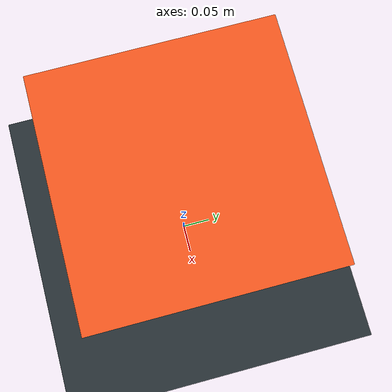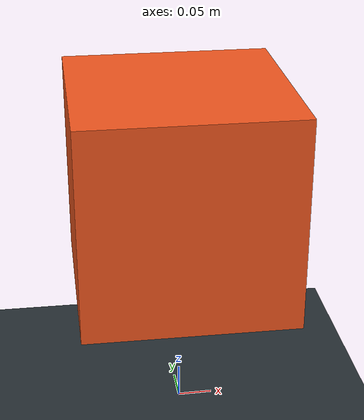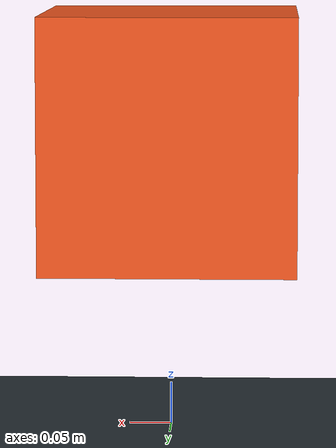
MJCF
<mujoco model="dexvision_simple_scene">
  <compiler angle="degree"/>

  <option timestep="0.01" gravity="0 0 -9.81"/>

  <asset>
    <texture name="skybox" type="skybox" builtin="gradient" rgb1="0.45 0.60 0.78" rgb2="0.05 0.07 0.10" width="512" height="512"/>
    <texture name="ground_grid" type="2d" builtin="checker" rgb1="0.18 0.22 0.24" rgb2="0.12 0.15 0.17" width="512" height="512"/>
    <material name="ground_grid" texture="ground_grid" texrepeat="6 6" reflectance="0.15"/>
    <material name="cube_orange" rgba="0.95 0.34 0.12 1"/>
  </asset>

  <worldbody>
    <light name="key_light" pos="0 -3 3" dir="0 1 -1" diffuse="0.9 0.9 0.85"/>
    <geom name="ground" type="plane" size="3 3 0.05" material="ground_grid"/>

    <body name="cube" pos="0 0 0.35">
      <freejoint name="cube_freejoint"/>
      <geom name="cube_geom" type="box" size="0.15 0.15 0.15" mass="0.5" material="cube_orange"/>
    </body>

    <camera name="overview" pos="1.4 -1.6 1.0" euler="60 0 40"/>
  </worldbody>
</mujoco>
